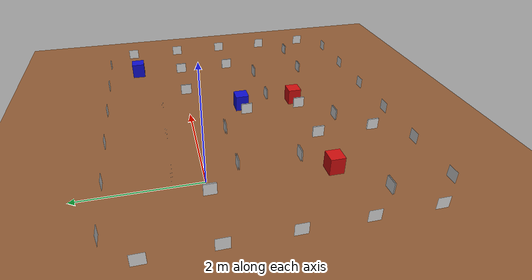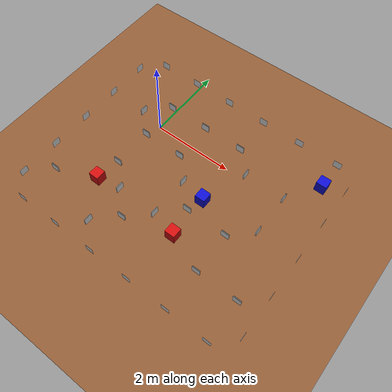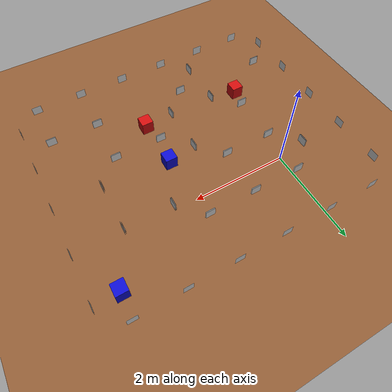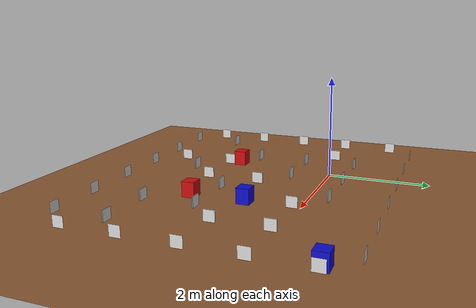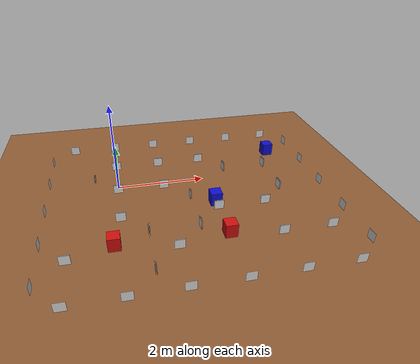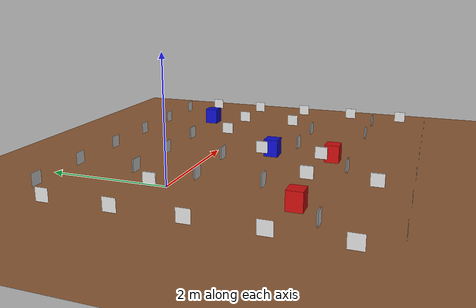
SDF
<sdf version="1.5">
 <world name="maze_6x5_v1_victimas">
  <physics type="ode">
   <max_step_size>0.001</max_step_size>
   <real_time_factor>1</real_time_factor>
   <real_time_update_rate>1000</real_time_update_rate>
   <gravity>0 0 -9.8</gravity>
  </physics>
  <plugin filename="gz-sim-physics-system" name="gz::sim::systems::Physics"/>
  <plugin filename="gz-sim-user-commands-system" name="gz::sim::systems::UserCommands"/>
  <plugin filename="gz-sim-scene-broadcaster-system" name="gz::sim::systems::SceneBroadcaster"/>
  <plugin filename="gz-sim-contact-system" name="gz::sim::systems::Contact"/>
  <plugin filename="gz-sim-sensors-system" name="gz::sim::systems::Sensors">
   <render_engine>ogre2</render_engine>
  </plugin>
  <plugin filename="gz-sim-imu-system" name="gz::sim::systems::Imu"/>
  <scene>
   <shadows>false</shadows>
   <ambient>0.2 0.2 0.2 1</ambient>
   <background>1 1 1 1</background>
   <grid>false</grid>
   <origin_visual>false</origin_visual>
  </scene>
  <include><uri>model://sun</uri></include>
  <light name="camera_spot_1_light" type="spot">
   <pose>-6 4 4 0 -1 -0.8</pose>
   <diffuse>0.5 0.5 0.5 1</diffuse>
   <specular>0.1 0.1 0.1 1</specular>
   <direction>0 0 -1</direction>
   <attenuation>
    <range>20</range>
    <constant>0.2</constant>
    <linear>0.01</linear>
    <quadratic>0.001</quadratic>
   </attenuation>
   <cast_shadows>0</cast_shadows>
   <spot><inner_angle>0.6</inner_angle><outer_angle>1</outer_angle><falloff>1</falloff></spot>
  </light>
  <light name="camera_spot_2_light" type="spot">
   <pose>5 -3 4 0 0.8 -0.6</pose>
   <diffuse>0.5 0.5 0.5 1</diffuse>
   <specular>0.1 0.1 0.1 1</specular>
   <direction>0 0 -1</direction>
   <attenuation>
    <range>20</range>
    <constant>0.3</constant>
    <linear>0.01</linear>
    <quadratic>0.001</quadratic>
   </attenuation>
   <cast_shadows>0</cast_shadows>
   <spot><inner_angle>0.6</inner_angle><outer_angle>1</outer_angle><falloff>1</falloff></spot>
  </light>
  <include><uri>model://floor_parquet2</uri><pose>1.5 -1.0 0 0 0 0</pose></include>
  <include><uri>model://maze_1_tags</uri><pose>-1.5 -3.5 0 0 0 0</pose></include>
  <model name="marcas_color">
   <static>1</static>
   <link name="cuadrado_rojo_1">
    <pose>-0.1698 -2.0228 0.15 0 0 0</pose>
    <collision name="collision"><geometry><box><size>0.25 0.25 0.3</size></box></geometry></collision>
    <visual name="visual">
     <geometry><box><size>0.25 0.25 0.3</size></box></geometry>
     <material>
      <ambient>0.8 0.05 0.05 1</ambient>
      <diffuse>0.8 0.05 0.05 1</diffuse>
      <specular>0.1 0.1 0.1 1</specular>
     </material>
    </visual>
   </link>
   <link name="cuadrado_azul_1">
    <pose>2.0594 -1.0174 0.15 0 0 0</pose>
    <collision name="collision"><geometry><box><size>0.25 0.25 0.3</size></box></geometry></collision>
    <visual name="visual">
     <geometry><box><size>0.25 0.25 0.3</size></box></geometry>
     <material>
      <ambient>0.05 0.05 0.8 1</ambient>
      <diffuse>0.05 0.05 0.8 1</diffuse>
      <specular>0.1 0.1 0.1 1</specular>
     </material>
    </visual>
   </link>
   <link name="cuadrado_rojo_2">
    <pose>2.0734 -2.0864 0.15 0 0 0</pose>
    <collision name="collision"><geometry><box><size>0.25 0.25 0.3</size></box></geometry></collision>
    <visual name="visual">
     <geometry><box><size>0.25 0.25 0.3</size></box></geometry>
     <material>
      <ambient>0.8 0.05 0.05 1</ambient>
      <diffuse>0.8 0.05 0.05 1</diffuse>
      <specular>0.1 0.1 0.1 1</specular>
     </material>
    </visual>
   </link>
   <link name="cuadrado_azul_2">
    <pose>3.9811 0.9197 0.15 0 0 0</pose>
    <collision name="collision"><geometry><box><size>0.25 0.25 0.3</size></box></geometry></collision>
    <visual name="visual">
     <geometry><box><size>0.25 0.25 0.3</size></box></geometry>
     <material>
      <ambient>0.05 0.05 0.8 1</ambient>
      <diffuse>0.05 0.05 0.8 1</diffuse>
      <specular>0.1 0.1 0.1 1</specular>
     </material>
    </visual>
   </link>
  </model>
 </world>
</sdf>

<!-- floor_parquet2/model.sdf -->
<sdf version='1.4'>
  <model name='parquet2_plane'>
    <static>true</static>
    <link name='link'>
      <collision name='collision_parquet2'>
        <geometry>
          <plane>
            <normal>0 0 1</normal>
            <size>500 500</size>
          </plane>
        </geometry>
        <surface>
          <friction>
            <ode>
              <mu>0.5</mu>
              <mu2>.5</mu2>
            </ode>
          </friction>
        </surface>
      </collision>
      <visual name='visual_parquet2'>
        <pose>0 0 0 0 0 0</pose>

        <cast_shadows>false</cast_shadows>
        <geometry>
          <plane>
            <normal>0 0 1</normal>
            <size>9 9</size>
          </plane>
        </geometry>
        <material>
          <ambient>0.35 0.22 0.13 1</ambient>
          <diffuse>0.55 0.35 0.20 1</diffuse>
          <specular>0.05 0.05 0.05 1</specular>
        </material>
      </visual>
    </link>
  </model>
</sdf>

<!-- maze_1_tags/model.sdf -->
<sdf version="1.5">

 <model name="tag36h11_maze_1">
    <static>true</static>
    <link name='tags'>

<!-- Row 0, outer wall along increasing x axis (y:0) -->
<!-- Tags 0 to 9 -->
      <visual name='tag36_11_00000'>
        <pose>0.5 0.011 0.3 1.5708 0 3.14159</pose> <!-- Y: sets yaw or direction towards the ar tag is pointing to -->
        <cast_shadows>false</cast_shadows>
        <geometry>
          <plane>
            <normal>0 0 1</normal>
            <size>.2 .2</size>
          </plane>
        </geometry>
        <material>
          <ambient>0.85 0.85 0.85 1</ambient>
          <diffuse>0.85 0.85 0.85 1</diffuse>
          <specular>0.1 0.1 0.1 1</specular>
        </material>
      </visual>

      <visual name='tag36_11_00001'>
        <pose>1.5 0.011 0.3 1.5708 0 3.14159</pose>
        <cast_shadows>false</cast_shadows>
        <geometry>
          <plane>
            <normal>0 0 1</normal>
            <size>.2 .2</size>
          </plane>
        </geometry>
        <material>
          <ambient>0.85 0.85 0.85 1</ambient>
          <diffuse>0.85 0.85 0.85 1</diffuse>
          <specular>0.1 0.1 0.1 1</specular>
        </material>
      </visual>

      <visual name='tag36_11_00002'>
        <pose>2.5 0.011 0.3 1.5708 0 3.14159</pose>
        <cast_shadows>false</cast_shadows>
        <geometry>
          <plane>
            <normal>0 0 1</normal>
            <size>.2 .2</size>
          </plane>
        </geometry>
        <material>
          <ambient>0.85 0.85 0.85 1</ambient>
          <diffuse>0.85 0.85 0.85 1</diffuse>
          <specular>0.1 0.1 0.1 1</specular>
        </material>
      </visual>

      <visual name='tag36_11_00003'>
        <pose>3.5 0.011 0.3 1.5708 0 3.14159</pose>
        <cast_shadows>false</cast_shadows>
        <geometry>
          <plane>
            <normal>0 0 1</normal>
            <size>.2 .2</size>
          </plane>
        </geometry>
        <material>
          <ambient>0.85 0.85 0.85 1</ambient>
          <diffuse>0.85 0.85 0.85 1</diffuse>
          <specular>0.1 0.1 0.1 1</specular>
        </material>
      </visual>

      <visual name='tag36_11_00004'>
        <pose>4.5 0.011 0.3 1.5708 0 3.14159</pose>
        <cast_shadows>false</cast_shadows>
        <geometry>
          <plane>
            <normal>0 0 1</normal>
            <size>.2 .2</size>
          </plane>
        </geometry>
        <material>
          <ambient>0.85 0.85 0.85 1</ambient>
          <diffuse>0.85 0.85 0.85 1</diffuse>
          <specular>0.1 0.1 0.1 1</specular>
        </material>
      </visual>

      <visual name='tag36_11_00005'>
        <pose>5.5 0.011 0.3 1.5708 0 3.14159</pose>
        <cast_shadows>false</cast_shadows>
        <geometry>
          <plane>
            <normal>0 0 1</normal>
            <size>.2 .2</size>
          </plane>
        </geometry>
        <material>
          <ambient>0.85 0.85 0.85 1</ambient>
          <diffuse>0.85 0.85 0.85 1</diffuse>
          <specular>0.1 0.1 0.1 1</specular>
        </material>
      </visual>

<!-- Row 1, first row of panels along increasing x axis (y:1) -->
      <!-- Tags 10 to 29 -->
      <!-- Panel 1 in Row 1 -->

      <visual name='tag36_11_00010'>
        <pose>0.5 1.011 0.3 1.5708 0 3.14159</pose>
        <cast_shadows>false</cast_shadows>
        <geometry>
          <plane>
            <normal>0 0 1</normal>
            <size>.2 .2</size>
          </plane>
        </geometry>
        <material>
          <ambient>0.85 0.85 0.85 1</ambient>
          <diffuse>0.85 0.85 0.85 1</diffuse>
          <specular>0.1 0.1 0.1 1</specular>
        </material>
      </visual>

      <visual name='tag36_11_00011'>
        <pose>0.5 0.989 0.3 1.5708 0 0</pose>
        <cast_shadows>false</cast_shadows>
        <geometry>
          <plane>
            <normal>0 0 1</normal>
            <size>.2 .2</size>
          </plane>
        </geometry>
        <material>
          <ambient>0.85 0.85 0.85 1</ambient>
          <diffuse>0.85 0.85 0.85 1</diffuse>
          <specular>0.1 0.1 0.1 1</specular>
        </material>
      </visual>

      <!-- Panel 2 in Row 1 -->

      <!-- Panel 3 in Row 1 -->

      <visual name='tag36_11_00014'>
        <pose>2.5 1.011 0.3 1.5708 0 3.14159</pose>
        <cast_shadows>false</cast_shadows>
        <geometry>
          <plane>
            <normal>0 0 1</normal>
            <size>.2 .2</size>
          </plane>
        </geometry>
        <material>
          <ambient>0.85 0.85 0.85 1</ambient>
          <diffuse>0.85 0.85 0.85 1</diffuse>
          <specular>0.1 0.1 0.1 1</specular>
        </material>
      </visual>

      <visual name='tag36_11_00015'>
        <pose>2.5 0.989 0.3 1.5708 0 0</pose>
        <cast_shadows>false</cast_shadows>
        <geometry>
          <plane>
            <normal>0 0 1</normal>
            <size>.2 .2</size>
          </plane>
        </geometry>
        <material>
          <ambient>0.85 0.85 0.85 1</ambient>
          <diffuse>0.85 0.85 0.85 1</diffuse>
          <specular>0.1 0.1 0.1 1</specular>
        </material>
      </visual>

      <!-- Panel 4 in Row 1 -->

     <!-- Panel 5 in Row 1 -->
      <visual name='tag36_11_00018'>
        <pose>4.5 1.011 0.3 1.5708 0 3.14159</pose>
        <cast_shadows>false</cast_shadows>
        <geometry>
          <plane>
            <normal>0 0 1</normal>
            <size>.2 .2</size>
          </plane>
        </geometry>
        <material>
          <ambient>0.85 0.85 0.85 1</ambient>
          <diffuse>0.85 0.85 0.85 1</diffuse>
          <specular>0.1 0.1 0.1 1</specular>
        </material>
      </visual>

      <visual name='tag36_11_00019'>
        <pose>4.5 0.989 0.3 1.5708 0 0</pose>
        <cast_shadows>false</cast_shadows>
        <geometry>
          <plane>
            <normal>0 0 1</normal>
            <size>.2 .2</size>
          </plane>
        </geometry>
        <material>
          <ambient>0.85 0.85 0.85 1</ambient>
          <diffuse>0.85 0.85 0.85 1</diffuse>
          <specular>0.1 0.1 0.1 1</specular>
        </material>
      </visual>

      <!-- Panel 6 in Row 1 -->

      <visual name='tag36_11_00020'>
        <pose>5.5 1.011 0.3 1.5708 0 3.14159</pose>
        <cast_shadows>false</cast_shadows>
        <geometry>
          <plane>
            <normal>0 0 1</normal>
            <size>.2 .2</size>
          </plane>
        </geometry>
        <material>
          <ambient>0.85 0.85 0.85 1</ambient>
          <diffuse>0.85 0.85 0.85 1</diffuse>
          <specular>0.1 0.1 0.1 1</specular>
        </material>
      </visual>

      <visual name='tag36_11_00021'>
        <pose>5.5 0.989 0.3 1.5708 0 0</pose>
        <cast_shadows>false</cast_shadows>
        <geometry>
          <plane>
            <normal>0 0 1</normal>
            <size>.2 .2</size>
          </plane>
        </geometry>
        <material>
          <ambient>0.85 0.85 0.85 1</ambient>
          <diffuse>0.85 0.85 0.85 1</diffuse>
          <specular>0.1 0.1 0.1 1</specular>
        </material>
      </visual>

<!-- Row 2, second row of panels along increasing x axis (y:2) -->
      <!-- Tags 30 to 49 -->
      <!-- Panel 1 in Row 2 -->

      <!-- Panel 2 in Row 2 -->
      <visual name='tag36_11_00032'>
        <pose>1.5 2.011 0.3 1.5708 0 3.14159</pose>
        <cast_shadows>false</cast_shadows>
        <geometry>
          <plane>
            <normal>0 0 1</normal>
            <size>.2 .2</size>
          </plane>
        </geometry>
        <material>
          <ambient>0.85 0.85 0.85 1</ambient>
          <diffuse>0.85 0.85 0.85 1</diffuse>
          <specular>0.1 0.1 0.1 1</specular>
        </material>
      </visual>

      <visual name='tag36_11_00033'>
        <pose>1.5 1.989 0.3 1.5708 0 0</pose>
        <cast_shadows>false</cast_shadows>
        <geometry>
          <plane>
            <normal>0 0 1</normal>
            <size>.2 .2</size>
          </plane>
        </geometry>
        <material>
          <ambient>0.85 0.85 0.85 1</ambient>
          <diffuse>0.85 0.85 0.85 1</diffuse>
          <specular>0.1 0.1 0.1 1</specular>
        </material>
      </visual>

      <!-- Panel 3 in Row 2 -->

      <!-- Panel 4 in Row 2 -->

      <visual name='tag36_11_00036'>
        <pose>3.5 2.011 0.3 1.5708 0 3.14159</pose>
        <cast_shadows>false</cast_shadows>
        <geometry>
          <plane>
            <normal>0 0 1</normal>
            <size>.2 .2</size>
          </plane>
        </geometry>
        <material>
          <ambient>0.85 0.85 0.85 1</ambient>
          <diffuse>0.85 0.85 0.85 1</diffuse>
          <specular>0.1 0.1 0.1 1</specular>
        </material>
      </visual>

      <visual name='tag36_11_00037'>
        <pose>3.5 1.989 0.3 1.5708 0 0</pose>
        <cast_shadows>false</cast_shadows>
        <geometry>
          <plane>
            <normal>0 0 1</normal>
            <size>.2 .2</size>
          </plane>
        </geometry>
        <material>
          <ambient>0.85 0.85 0.85 1</ambient>
          <diffuse>0.85 0.85 0.85 1</diffuse>
          <specular>0.1 0.1 0.1 1</specular>
        </material>
      </visual>

     <!-- Panel 5 in Row 2 -->

      <visual name='tag36_11_00038'>
        <pose>4.5 2.011 0.3 1.5708 0 3.14159</pose>
        <cast_shadows>false</cast_shadows>
        <geometry>
          <plane>
            <normal>0 0 1</normal>
            <size>.2 .2</size>
          </plane>
        </geometry>
        <material>
          <ambient>0.85 0.85 0.85 1</ambient>
          <diffuse>0.85 0.85 0.85 1</diffuse>
          <specular>0.1 0.1 0.1 1</specular>
        </material>
      </visual>

      <visual name='tag36_11_00039'>
        <pose>4.5 1.989 0.3 1.5708 0 0</pose>
        <cast_shadows>false</cast_shadows>
        <geometry>
          <plane>
            <normal>0 0 1</normal>
            <size>.2 .2</size>
          </plane>
        </geometry>
        <material>
          <ambient>0.85 0.85 0.85 1</ambient>
          <diffuse>0.85 0.85 0.85 1</diffuse>
          <specular>0.1 0.1 0.1 1</specular>
        </material>
      </visual>

      <!-- Panel 6 in Row 2 -->

<!-- Row 3, third row of panels along increasing x axis (y:3) -->
      <!-- Tags 50 to 69 -->
      <!-- Panel 1 in Row 3 -->
      <!-- Panel 2 in Row 3 -->

      <visual name='tag36_11_00052'>
        <pose>1.5 3.011 0.3 1.5708 0 3.14159</pose>
        <cast_shadows>false</cast_shadows>
        <geometry>
          <plane>
            <normal>0 0 1</normal>
            <size>.2 .2</size>
          </plane>
        </geometry>
        <material>
          <ambient>0.85 0.85 0.85 1</ambient>
          <diffuse>0.85 0.85 0.85 1</diffuse>
          <specular>0.1 0.1 0.1 1</specular>
        </material>
      </visual>

      <visual name='tag36_11_00053'>
        <pose>1.5 2.989 0.3 1.5708 0 0</pose>
        <cast_shadows>false</cast_shadows>
        <geometry>
          <plane>
            <normal>0 0 1</normal>
            <size>.2 .2</size>
          </plane>
        </geometry>
        <material>
          <ambient>0.85 0.85 0.85 1</ambient>
          <diffuse>0.85 0.85 0.85 1</diffuse>
          <specular>0.1 0.1 0.1 1</specular>
        </material>
      </visual>

      <!-- Panel 3 in Row 3 -->
      <visual name='tag36_11_00054'>
        <pose>2.5 3.011 0.3 1.5708 0 3.14159</pose>
        <cast_shadows>false</cast_shadows>
        <geometry>
          <plane>
            <normal>0 0 1</normal>
            <size>.2 .2</size>
          </plane>
        </geometry>
        <material>
          <ambient>0.85 0.85 0.85 1</ambient>
          <diffuse>0.85 0.85 0.85 1</diffuse>
          <specular>0.1 0.1 0.1 1</specular>
        </material>
      </visual>

      <visual name='tag36_11_00055'>
        <pose>2.5 2.989 0.3 1.5708 0 0</pose>
        <cast_shadows>false</cast_shadows>
        <geometry>
          <plane>
            <normal>0 0 1</normal>
            <size>.2 .2</size>
          </plane>
        </geometry>
        <material>
          <ambient>0.85 0.85 0.85 1</ambient>
          <diffuse>0.85 0.85 0.85 1</diffuse>
          <specular>0.1 0.1 0.1 1</specular>
        </material>
      </visual>

      <!-- Panel 4 in Row 3 -->
     <!-- Panel 5 in Row 3 -->
      <!-- Panel 6 in Row 3 -->

<!-- Row 4, fourth row of panels along increasing x axis (y:4) -->
      <!-- Tags 70 to 89 -->
      <!-- Panel 1 in Row 4 -->
      <!-- Panel 2 in Row 4 -->

      <visual name='tag36_11_00072'>
        <pose>1.5 4.011 0.3 1.5708 0 3.14159</pose>
        <cast_shadows>false</cast_shadows>
        <geometry>
          <plane>
            <normal>0 0 1</normal>
            <size>.2 .2</size>
          </plane>
        </geometry>
        <material>
          <ambient>0.85 0.85 0.85 1</ambient>
          <diffuse>0.85 0.85 0.85 1</diffuse>
          <specular>0.1 0.1 0.1 1</specular>
        </material>
      </visual>

      <visual name='tag36_11_00073'>
        <pose>1.5 3.989 0.3 1.5708 0 0</pose>
        <cast_shadows>false</cast_shadows>
        <geometry>
          <plane>
            <normal>0 0 1</normal>
            <size>.2 .2</size>
          </plane>
        </geometry>
        <material>
          <ambient>0.85 0.85 0.85 1</ambient>
          <diffuse>0.85 0.85 0.85 1</diffuse>
          <specular>0.1 0.1 0.1 1</specular>
        </material>
      </visual>

      <!-- Panel 3 in Row 4 -->

      <visual name='tag36_11_00074'>
        <pose>2.5 4.011 0.3 1.5708 0 3.14159</pose>
        <cast_shadows>false</cast_shadows>
        <geometry>
          <plane>
            <normal>0 0 1</normal>
            <size>.2 .2</size>
          </plane>
        </geometry>
        <material>
          <ambient>0.85 0.85 0.85 1</ambient>
          <diffuse>0.85 0.85 0.85 1</diffuse>
          <specular>0.1 0.1 0.1 1</specular>
        </material>
      </visual>

      <visual name='tag36_11_00075'>
        <pose>2.5 3.989 0.3 1.5708 0 0</pose>
        <cast_shadows>false</cast_shadows>
        <geometry>
          <plane>
            <normal>0 0 1</normal>
            <size>.2 .2</size>
          </plane>
        </geometry>
        <material>
          <ambient>0.85 0.85 0.85 1</ambient>
          <diffuse>0.85 0.85 0.85 1</diffuse>
          <specular>0.1 0.1 0.1 1</specular>
        </material>
      </visual>

      <!-- Panel 4 in Row 4 -->
      <visual name='tag36_11_00076'>
        <pose>3.5 4.011 0.3 1.5708 0 3.14159</pose>
        <cast_shadows>false</cast_shadows>
        <geometry>
          <plane>
            <normal>0 0 1</normal>
            <size>.2 .2</size>
          </plane>
        </geometry>
        <material>
          <ambient>0.85 0.85 0.85 1</ambient>
          <diffuse>0.85 0.85 0.85 1</diffuse>
          <specular>0.1 0.1 0.1 1</specular>
        </material>
      </visual>

      <visual name='tag36_11_00077'>
        <pose>3.5 3.989 0.3 1.5708 0 0</pose>
        <cast_shadows>false</cast_shadows>
        <geometry>
          <plane>
            <normal>0 0 1</normal>
            <size>.2 .2</size>
          </plane>
        </geometry>
        <material>
          <ambient>0.85 0.85 0.85 1</ambient>
          <diffuse>0.85 0.85 0.85 1</diffuse>
          <specular>0.1 0.1 0.1 1</specular>
        </material>
      </visual>

     <!-- Panel 5 in Row 4 -->

      <!-- Panel 6 in Row 4 -->
<!-- Row 5, fifth row of panels along increasing x axis (y:5) -->
      <!-- Tags 90 to 109 -->
      <!-- Panel 1 in Row 5 -->
      <visual name='tag36_11_00091'>
        <pose>0.5 4.989 0.3 1.5708 0 0</pose>
        <cast_shadows>false</cast_shadows>
        <geometry>
          <plane>
            <normal>0 0 1</normal>
            <size>.2 .2</size>
          </plane>
        </geometry>
        <material>
          <ambient>0.85 0.85 0.85 1</ambient>
          <diffuse>0.85 0.85 0.85 1</diffuse>
          <specular>0.1 0.1 0.1 1</specular>
        </material>
      </visual>

      <!-- Panel 2 in Row 5 -->
      <visual name='tag36_11_00093'>
        <pose>1.5 4.989 0.3 1.5708 0 0</pose>
        <cast_shadows>false</cast_shadows>
        <geometry>
          <plane>
            <normal>0 0 1</normal>
            <size>.2 .2</size>
          </plane>
        </geometry>
        <material>
          <ambient>0.85 0.85 0.85 1</ambient>
          <diffuse>0.85 0.85 0.85 1</diffuse>
          <specular>0.1 0.1 0.1 1</specular>
        </material>
      </visual>

      <!-- Panel 3 in Row 5 -->
      <visual name='tag36_11_00095'>
        <pose>2.5 4.989 0.3 1.5708 0 0</pose>
        <cast_shadows>false</cast_shadows>
        <geometry>
          <plane>
            <normal>0 0 1</normal>
            <size>.2 .2</size>
          </plane>
        </geometry>
        <material>
          <ambient>0.85 0.85 0.85 1</ambient>
          <diffuse>0.85 0.85 0.85 1</diffuse>
          <specular>0.1 0.1 0.1 1</specular>
        </material>
      </visual>

      <!-- Panel 4 in Row 5 -->
      <visual name='tag36_11_00097'>
        <pose>3.5 4.989 0.3 1.5708 0 0</pose>
        <cast_shadows>false</cast_shadows>
        <geometry>
          <plane>
            <normal>0 0 1</normal>
            <size>.2 .2</size>
          </plane>
        </geometry>
        <material>
          <ambient>0.85 0.85 0.85 1</ambient>
          <diffuse>0.85 0.85 0.85 1</diffuse>
          <specular>0.1 0.1 0.1 1</specular>
        </material>
      </visual>

     <!-- Panel 5 in Row 5 -->
      <visual name='tag36_11_00099'>
        <pose>4.5 4.989 0.3 1.5708 0 0</pose>
        <cast_shadows>false</cast_shadows>
        <geometry>
          <plane>
            <normal>0 0 1</normal>
            <size>.2 .2</size>
          </plane>
        </geometry>
        <material>
          <ambient>0.85 0.85 0.85 1</ambient>
          <diffuse>0.85 0.85 0.85 1</diffuse>
          <specular>0.1 0.1 0.1 1</specular>
        </material>
      </visual>

      <!-- Panel 6 in Row 5 -->
      <visual name='tag36_11_00101'>
        <pose>5.5 4.989 0.3 1.5708 0 0</pose>
        <cast_shadows>false</cast_shadows>
        <geometry>
          <plane>
            <normal>0 0 1</normal>
            <size>.2 .2</size>
          </plane>
        </geometry>
        <material>
          <ambient>0.85 0.85 0.85 1</ambient>
          <diffuse>0.85 0.85 0.85 1</diffuse>
          <specular>0.1 0.1 0.1 1</specular>
        </material>
      </visual>

<!-- Row 6, sixth row of panels along increasing x axis (y:6) -->
      <!-- Tags 110 to 129 -->
      <!-- Panel 1 in Row 6 -->
      <!-- Panel 2 in Row 6 -->
      <!-- Panel 3 in Row 6 -->
      <!-- Panel 4 in Row 6 -->
     <!-- Panel 5 in Row 6 -->
      <!-- Panel 6 in Row 6 -->

<!-- Placeholder Row 7, seventh row of panels along increasing x axis (y:7) -->
      <!-- Tags 130 to 149 -->

<!-- Placeholder Row 8, seventh row of panels along increasing x axis (y:8) -->
      <!-- Tags 150 to 169 -->

<!-- Placeholder Row 9, seventh row of panels along increasing x axis (y:9) -->
      <!-- Tags 170 to 189 -->

<!-- Placeholder Row 10, seventh row of panels along increasing x axis (y:10) -->
      <!-- Tags 190 to 209 -->

<!-- Column 0, outer wall along increasing y axis (x:0) -->
<!-- Tags 300 to 309 -->
      <visual name='tag36_11_00300'>
        <pose>0.011 0.5 0.3 1.5708 0 1.5708</pose> <!-- Y: sets yaw or direction towards the ar tag is pointing to -->
        <cast_shadows>false</cast_shadows>
        <geometry>
          <plane>
            <normal>0 0 1</normal>
            <size>.2 .2</size>
          </plane>
        </geometry>
        <material>
          <ambient>0.85 0.85 0.85 1</ambient>
          <diffuse>0.85 0.85 0.85 1</diffuse>
          <specular>0.1 0.1 0.1 1</specular>
        </material>
      </visual>

      <visual name='tag36_11_00301'>
        <pose>0.011 1.5 0.3 1.5708 0 1.5708</pose>
        <cast_shadows>false</cast_shadows>
        <geometry>
          <plane>
            <normal>0 0 1</normal>
            <size>.2 .2</size>
          </plane>
        </geometry>
        <material>
          <ambient>0.85 0.85 0.85 1</ambient>
          <diffuse>0.85 0.85 0.85 1</diffuse>
          <specular>0.1 0.1 0.1 1</specular>
        </material>
      </visual>

      <visual name='tag36_11_00302'>
        <pose>0.011 2.5 0.3 1.5708 0 1.5708</pose>
        <cast_shadows>false</cast_shadows>
        <geometry>
          <plane>
            <normal>0 0 1</normal>
            <size>.2 .2</size>
          </plane>
        </geometry>
        <material>
          <ambient>0.85 0.85 0.85 1</ambient>
          <diffuse>0.85 0.85 0.85 1</diffuse>
          <specular>0.1 0.1 0.1 1</specular>
        </material>
      </visual>

      <visual name='tag36_11_00303'>
        <pose>0.011 3.5 0.3 1.5708 0 1.5708</pose>
        <cast_shadows>false</cast_shadows>
        <geometry>
          <plane>
            <normal>0 0 1</normal>
            <size>.2 .2</size>
          </plane>
        </geometry>
        <material>
          <ambient>0.85 0.85 0.85 1</ambient>
          <diffuse>0.85 0.85 0.85 1</diffuse>
          <specular>0.1 0.1 0.1 1</specular>
        </material>
      </visual>

      <visual name='tag36_11_00304'>
        <pose>0.011 4.5 0.3 1.5708 0 1.5708</pose>
        <cast_shadows>false</cast_shadows>
        <geometry>
          <plane>
            <normal>0 0 1</normal>
            <size>.2 .2</size>
          </plane>
        </geometry>
        <material>
          <ambient>0.85 0.85 0.85 1</ambient>
          <diffuse>0.85 0.85 0.85 1</diffuse>
          <specular>0.1 0.1 0.1 1</specular>
        </material>
      </visual>

<!-- Column 1, first row of panels along increasing y axis (x:1) -->
      <!-- Tags 310 to 329 -->
      <!-- Panel 1 in Column 1 -->
      <!-- Panel 2 in Column 1 -->

      <!-- Panel 3 in Column 1 -->
      <!-- Panel 4 in Column 1 -->
      <visual name='tag36_11_00316'>
        <pose>1.011 3.5 0.3 1.5708 0 1.5708</pose>
        <cast_shadows>false</cast_shadows>
        <geometry>
          <plane>
            <normal>0 0 1</normal>
            <size>.2 .2</size>
          </plane>
        </geometry>
        <material>
          <ambient>0.85 0.85 0.85 1</ambient>
          <diffuse>0.85 0.85 0.85 1</diffuse>
          <specular>0.1 0.1 0.1 1</specular>
        </material>
      </visual>

      <visual name='tag36_11_00317'>
        <pose>0.989 3.5 0.3 1.5708 0 -1.5708</pose>
        <cast_shadows>false</cast_shadows>
        <geometry>
          <plane>
            <normal>0 0 1</normal>
            <size>.2 .2</size>
          </plane>
        </geometry>
        <material>
          <ambient>0.85 0.85 0.85 1</ambient>
          <diffuse>0.85 0.85 0.85 1</diffuse>
          <specular>0.1 0.1 0.1 1</specular>
        </material>
      </visual>

     <!-- Panel 5 in Column 1 -->

      <!-- Panel 6 in Column 1 -->

<!-- Column 2, second row of panels along increasing y axis (x:2) -->
      <!-- Tags 330 to 349 -->
      <!-- Panel 1 in Column 2 -->

      <visual name='tag36_11_00330'>
        <pose>2.011 0.5 0.3 1.5708 0 1.5708</pose>
        <cast_shadows>false</cast_shadows>
        <geometry>
          <plane>
            <normal>0 0 1</normal>
            <size>.2 .2</size>
          </plane>
        </geometry>
        <material>
          <ambient>0.85 0.85 0.85 1</ambient>
          <diffuse>0.85 0.85 0.85 1</diffuse>
          <specular>0.1 0.1 0.1 1</specular>
        </material>
      </visual>

      <visual name='tag36_11_00331'>
        <pose>1.989 0.5 0.3 1.5708 0 -1.5708</pose>
        <cast_shadows>false</cast_shadows>
        <geometry>
          <plane>
            <normal>0 0 1</normal>
            <size>.2 .2</size>
          </plane>
        </geometry>
        <material>
          <ambient>0.85 0.85 0.85 1</ambient>
          <diffuse>0.85 0.85 0.85 1</diffuse>
          <specular>0.1 0.1 0.1 1</specular>
        </material>
      </visual>

      <!-- Panel 2 in Column 2 -->
      <visual name='tag36_11_00332'>
        <pose>2.011 1.5 0.3 1.5708 0 1.5708</pose>
        <cast_shadows>false</cast_shadows>
        <geometry>
          <plane>
            <normal>0 0 1</normal>
            <size>.2 .2</size>
          </plane>
        </geometry>
        <material>
          <ambient>0.85 0.85 0.85 1</ambient>
          <diffuse>0.85 0.85 0.85 1</diffuse>
          <specular>0.1 0.1 0.1 1</specular>
        </material>
      </visual>

      <visual name='tag36_11_00333'>
        <pose>1.989 1.5 0.3 1.5708 0 -1.5708</pose>
        <cast_shadows>false</cast_shadows>
        <geometry>
          <plane>
            <normal>0 0 1</normal>
            <size>.2 .2</size>
          </plane>
        </geometry>
        <material>
          <ambient>0.85 0.85 0.85 1</ambient>
          <diffuse>0.85 0.85 0.85 1</diffuse>
          <specular>0.1 0.1 0.1 1</specular>
        </material>
      </visual>

      <!-- Panel 3 in Column 2 -->

      <!-- Panel 4 in Column 2 -->

     <!-- Panel 5 in Column 2 -->

      <!-- Panel 6 in Column 2 -->

<!-- Column 3, third row of panels along increasing y axis (x:3) -->
      <!-- Tags 350 to 369 -->
      <!-- Panel 1 in Column 3 -->

      <!-- Panel 2 in Column 3 -->

      <visual name='tag36_11_00352'>
        <pose>3.011 1.5 0.3 1.5708 0 1.5708</pose>
        <cast_shadows>false</cast_shadows>
        <geometry>
          <plane>
            <normal>0 0 1</normal>
            <size>.2 .2</size>
          </plane>
        </geometry>
        <material>
          <ambient>0.85 0.85 0.85 1</ambient>
          <diffuse>0.85 0.85 0.85 1</diffuse>
          <specular>0.1 0.1 0.1 1</specular>
        </material>
      </visual>

      <visual name='tag36_11_00353'>
        <pose>2.989 1.5 0.3 1.5708 0 -1.5708</pose>
        <cast_shadows>false</cast_shadows>
        <geometry>
          <plane>
            <normal>0 0 1</normal>
            <size>.2 .2</size>
          </plane>
        </geometry>
        <material>
          <ambient>0.85 0.85 0.85 1</ambient>
          <diffuse>0.85 0.85 0.85 1</diffuse>
          <specular>0.1 0.1 0.1 1</specular>
        </material>
      </visual>

      <!-- Panel 3 in Column 3 -->

      <visual name='tag36_11_00354'>
        <pose>3.011 2.5 0.3 1.5708 0 1.5708</pose>
        <cast_shadows>false</cast_shadows>
        <geometry>
          <plane>
            <normal>0 0 1</normal>
            <size>.2 .2</size>
          </plane>
        </geometry>
        <material>
          <ambient>0.85 0.85 0.85 1</ambient>
          <diffuse>0.85 0.85 0.85 1</diffuse>
          <specular>0.1 0.1 0.1 1</specular>
        </material>
      </visual>

      <visual name='tag36_11_00355'>
        <pose>2.989 2.5 0.3 1.5708 0 -1.5708</pose>
        <cast_shadows>false</cast_shadows>
        <geometry>
          <plane>
            <normal>0 0 1</normal>
            <size>.2 .2</size>
          </plane>
        </geometry>
        <material>
          <ambient>0.85 0.85 0.85 1</ambient>
          <diffuse>0.85 0.85 0.85 1</diffuse>
          <specular>0.1 0.1 0.1 1</specular>
        </material>
      </visual>

      <!-- Panel 4 in Column 3 -->

     <!-- Panel 5 in Column 3 -->

      <!-- Panel 6 in Column 3 -->

<!-- Column 4, fourth row of panels along increasing y axis (x:4) -->
      <!-- Tags 370 to 389 -->
      <!-- Panel 1 in Column 4 -->
      <!-- Panel 2 in Column 4 -->
      <!-- Panel 3 in Column 4 -->
      <!-- Panel 4 in Column 4 -->

      <visual name='tag36_11_00376'>
        <pose>4.011 3.5 0.3 1.5708 0 1.5708</pose>
        <cast_shadows>false</cast_shadows>
        <geometry>
          <plane>
            <normal>0 0 1</normal>
            <size>.2 .2</size>
          </plane>
        </geometry>
        <material>
          <ambient>0.85 0.85 0.85 1</ambient>
          <diffuse>0.85 0.85 0.85 1</diffuse>
          <specular>0.1 0.1 0.1 1</specular>
        </material>
      </visual>

      <visual name='tag36_11_00377'>
        <pose>3.989 3.5 0.3 1.5708 0 -1.5708</pose>
        <cast_shadows>false</cast_shadows>
        <geometry>
          <plane>
            <normal>0 0 1</normal>
            <size>.2 .2</size>
          </plane>
        </geometry>
        <material>
          <ambient>0.85 0.85 0.85 1</ambient>
          <diffuse>0.85 0.85 0.85 1</diffuse>
          <specular>0.1 0.1 0.1 1</specular>
        </material>
      </visual>

     <!-- Panel 5 in Column 4 -->
      <!-- Panel 6 in Column 4 -->

<!-- Column 5, fifth row of panels along increasing y axis (x:5) -->
      <!-- Tags 390 to 409 -->
      <!-- Panel 1 in Column 5 -->
      <!-- Panel 2 in Column 5 -->

      <!-- Panel 3 in Column 5 -->

      <visual name='tag36_11_00394'>
        <pose>5.011 2.5 0.3 1.5708 0 1.5708</pose>
        <cast_shadows>false</cast_shadows>
        <geometry>
          <plane>
            <normal>0 0 1</normal>
            <size>.2 .2</size>
          </plane>
        </geometry>
        <material>
          <ambient>0.85 0.85 0.85 1</ambient>
          <diffuse>0.85 0.85 0.85 1</diffuse>
          <specular>0.1 0.1 0.1 1</specular>
        </material>
      </visual>

      <visual name='tag36_11_00395'>
        <pose>4.989 2.5 0.3 1.5708 0 -1.5708</pose>
        <cast_shadows>false</cast_shadows>
        <geometry>
          <plane>
            <normal>0 0 1</normal>
            <size>.2 .2</size>
          </plane>
        </geometry>
        <material>
          <ambient>0.85 0.85 0.85 1</ambient>
          <diffuse>0.85 0.85 0.85 1</diffuse>
          <specular>0.1 0.1 0.1 1</specular>
        </material>
      </visual>

      <!-- Panel 4 in Column 5 -->

      <visual name='tag36_11_00396'>
        <pose>5.011 3.5 0.3 1.5708 0 1.5708</pose>
        <cast_shadows>false</cast_shadows>
        <geometry>
          <plane>
            <normal>0 0 1</normal>
            <size>.2 .2</size>
          </plane>
        </geometry>
        <material>
          <ambient>0.85 0.85 0.85 1</ambient>
          <diffuse>0.85 0.85 0.85 1</diffuse>
          <specular>0.1 0.1 0.1 1</specular>
        </material>
      </visual>

      <visual name='tag36_11_00397'>
        <pose>4.989 3.5 0.3 1.5708 0 -1.5708</pose>
        <cast_shadows>false</cast_shadows>
        <geometry>
          <plane>
            <normal>0 0 1</normal>
            <size>.2 .2</size>
          </plane>
        </geometry>
        <material>
          <ambient>0.85 0.85 0.85 1</ambient>
          <diffuse>0.85 0.85 0.85 1</diffuse>
          <specular>0.1 0.1 0.1 1</specular>
        </material>
      </visual>

     <!-- Panel 5 in Column 5 -->
      <!-- Panel 6 in Column 5 -->

<!-- Column 6, sixth row of panels along increasing y axis (x:6) -->
      <!-- Tags 410 to 429 -->
      <!-- Panel 1 in Column 6 -->
      <visual name='tag36_11_00411'>
        <pose>5.989 0.5 0.3 1.5708 0 -1.5708</pose>
        <cast_shadows>false</cast_shadows>
        <geometry>
          <plane>
            <normal>0 0 1</normal>
            <size>.2 .2</size>
          </plane>
        </geometry>
        <material>
          <ambient>0.85 0.85 0.85 1</ambient>
          <diffuse>0.85 0.85 0.85 1</diffuse>
          <specular>0.1 0.1 0.1 1</specular>
        </material>
      </visual>

      <!-- Panel 2 in Column 6 -->
      <visual name='tag36_11_00413'>
        <pose>5.989 1.5 0.3 1.5708 0 -1.5708</pose>
        <cast_shadows>false</cast_shadows>
        <geometry>
          <plane>
            <normal>0 0 1</normal>
            <size>.2 .2</size>
          </plane>
        </geometry>
        <material>
          <ambient>0.85 0.85 0.85 1</ambient>
          <diffuse>0.85 0.85 0.85 1</diffuse>
          <specular>0.1 0.1 0.1 1</specular>
        </material>
      </visual>

      <!-- Panel 3 in Column 6 -->
      <visual name='tag36_11_00415'>
        <pose>5.989 2.5 0.3 1.5708 0 -1.5708</pose>
        <cast_shadows>false</cast_shadows>
        <geometry>
          <plane>
            <normal>0 0 1</normal>
            <size>.2 .2</size>
          </plane>
        </geometry>
        <material>
          <ambient>0.85 0.85 0.85 1</ambient>
          <diffuse>0.85 0.85 0.85 1</diffuse>
          <specular>0.1 0.1 0.1 1</specular>
        </material>
      </visual>

      <!-- Panel 4 in Column 6 -->
      <visual name='tag36_11_00417'>
        <pose>5.989 3.5 0.3 1.5708 0 -1.5708</pose>
        <cast_shadows>false</cast_shadows>
        <geometry>
          <plane>
            <normal>0 0 1</normal>
            <size>.2 .2</size>
          </plane>
        </geometry>
        <material>
          <ambient>0.85 0.85 0.85 1</ambient>
          <diffuse>0.85 0.85 0.85 1</diffuse>
          <specular>0.1 0.1 0.1 1</specular>
        </material>
      </visual>

     <!-- Panel 5 in Column 6 -->
      <visual name='tag36_11_00419'>
        <pose>5.989 4.5 0.3 1.5708 0 -1.5708</pose>
        <cast_shadows>false</cast_shadows>
        <geometry>
          <plane>
            <normal>0 0 1</normal>
            <size>.2 .2</size>
          </plane>
        </geometry>
        <material>
          <ambient>0.85 0.85 0.85 1</ambient>
          <diffuse>0.85 0.85 0.85 1</diffuse>
          <specular>0.1 0.1 0.1 1</specular>
        </material>
      </visual>

      <!-- Panel 6 in Column 6 -->

<!-- Placeholder Column 7, seventh row of panels along increasing y axis (x:7) -->
      <!-- Tags 430 to 449 -->

<!-- Placeholder Column 8, seventh row of panels along increasing y axis (x:8) -->
      <!-- Tags 450 to 469 -->

<!-- Placeholder Column 9, seventh row of panels along increasing y axis (x:9) -->
      <!-- Tags 470 to 489 -->

<!-- Placeholder Column 10, seventh row of panels along increasing y axis (x:10) -->
      <!-- Tags 490 to 509 -->

    </link>
 </model>
</sdf>
